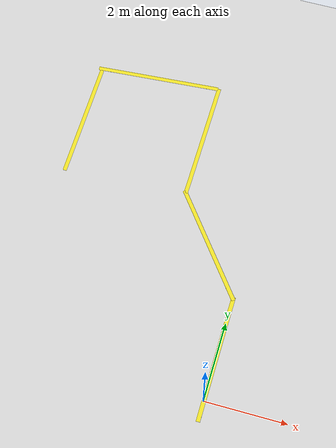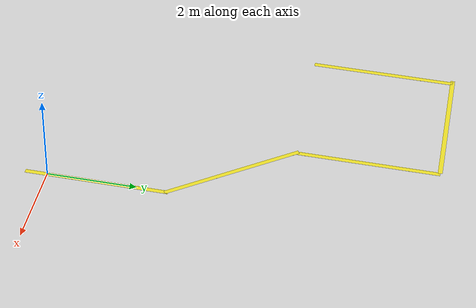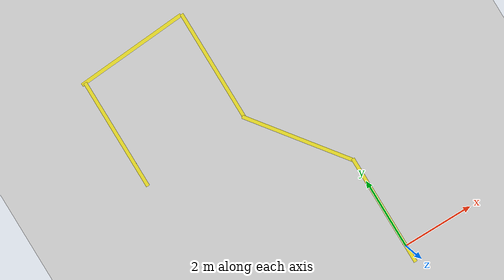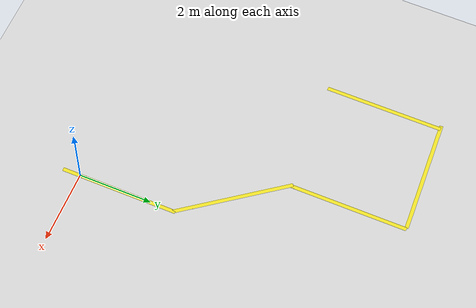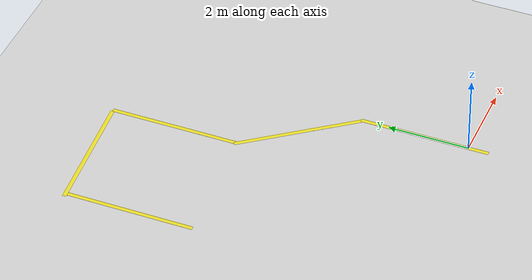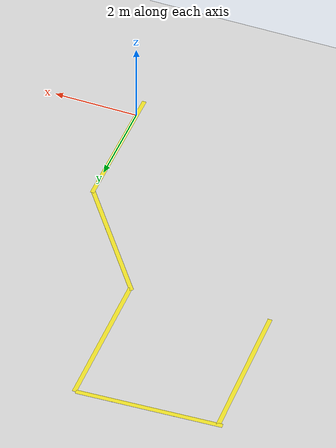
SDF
<sdf version="1.7">
 <world name="default">
  <light name="sun" type="directional">
   <pose>0 0 10 0 -0 0</pose>
   <diffuse>0.8 0.8 0.8 1</diffuse>
   <specular>0.2 0.2 0.2 1</specular>
   <attenuation>
    <range>1000</range>
    <constant>0.9</constant>
    <linear>0.01</linear>
    <quadratic>0.001</quadratic>
   </attenuation>
   <direction>-0.5 0.1 -0.9</direction>
   <spot><inner_angle>0</inner_angle><outer_angle>0</outer_angle><falloff>0</falloff></spot>
  </light>
  <model name="ground_plane">
   <static>1</static>
   <link name="link">
    <collision name="collision">
     <geometry><plane><normal>0 0 1</normal><size>100 100</size></plane></geometry>
     <surface>
      <contact><collide_bitmask>65535</collide_bitmask></contact>
      <friction><ode><mu>100</mu><mu2>50</mu2></ode></friction>
     </surface>
    </collision>
    <visual name="visual">
     <cast_shadows>0</cast_shadows>
     <geometry><plane><normal>0 0 1</normal><size>100 100</size></plane></geometry>
     <material>
      <script><uri>file://media/materials/scripts/gazebo.material</uri><name>Gazebo/Grey</name></script>
     </material>
    </visual>
   </link>
  </model>
  <gravity>0 0 -9.8</gravity>
  <magnetic_field>6e-06 2.3e-05 -4.2e-05</magnetic_field>
  <atmosphere type="adiabatic"/>
  <physics type="ode">
   <max_step_size>0.001</max_step_size>
   <real_time_factor>1</real_time_factor>
   <real_time_update_rate>1000</real_time_update_rate>
  </physics>
  <scene><ambient>0.4 0.4 0.4 1</ambient><background>0.7 0.7 0.7 1</background><shadows>1</shadows></scene>
  <spherical_coordinates>
   <surface_model>EARTH_WGS84</surface_model>
   <latitude_deg>0</latitude_deg>
   <longitude_deg>0</longitude_deg>
   <elevation>0</elevation>
   <heading_deg>0</heading_deg>
  </spherical_coordinates>
  <model name="yellow line">
   <static>1</static>
   <link name="link_ground">
    <collision name="collision">
     <geometry><plane><normal>0 0 1</normal><size>0.1 3.2</size></plane></geometry>
     <surface><friction><ode><mu>100</mu><mu2>50</mu2></ode></friction></surface>
    </collision>
    <visual name="visual_ground">
     <cast_shadows>0</cast_shadows>
     <geometry><plane><normal>0 0 1</normal><size>0.1 3.2</size></plane></geometry>
     <material>
      <script><uri>file://media/materials/scripts/gazebo.material</uri><name>Gazebo/Yellow</name></script>
     </material>
    </visual>
   </link>
   <pose>0.002969 1.09984 0.0002 0 -0 0</pose>
  </model>
  <model name="yellow line_0">
   <static>1</static>
   <link name="link_ground">
    <collision name="collision">
     <geometry><plane><normal>0 0 1</normal><size>0.1 3.2</size></plane></geometry>
     <surface><friction><ode><mu>100</mu><mu2>50</mu2></ode></friction></surface>
    </collision>
    <visual name="visual_ground">
     <cast_shadows>0</cast_shadows>
     <geometry><plane><normal>0 0 1</normal><size>0.1 3.2</size></plane></geometry>
     <material>
      <script><uri>file://media/materials/scripts/gazebo.material</uri><name>Gazebo/Yellow</name></script>
     </material>
    </visual>
   </link>
   <pose>-0.95 3.9 0.0002 0 -0 0.65</pose>
  </model>
  <model name="yellow line_1">
   <static>1</static>
   <link name="link_ground">
    <collision name="collision">
     <geometry><plane><normal>0 0 1</normal><size>0.1 3.2</size></plane></geometry>
     <surface><friction><ode><mu>100</mu><mu2>50</mu2></ode></friction></surface>
    </collision>
    <visual name="visual_ground">
     <cast_shadows>0</cast_shadows>
     <geometry><plane><normal>0 0 1</normal><size>0.1 3.2</size></plane></geometry>
     <material>
      <script><uri>file://media/materials/scripts/gazebo.material</uri><name>Gazebo/Yellow</name></script>
     </material>
    </visual>
   </link>
   <pose>-1.87418 6.72159 0.0002 0 -0 0</pose>
  </model>
  <model name="yellow line_2">
   <static>1</static>
   <link name="link_ground">
    <collision name="collision">
     <geometry><plane><normal>0 0 1</normal><size>0.1 3.2</size></plane></geometry>
     <surface><friction><ode><mu>100</mu><mu2>50</mu2></ode></friction></surface>
    </collision>
    <visual name="visual_ground">
     <cast_shadows>0</cast_shadows>
     <geometry><plane><normal>0 0 1</normal><size>0.1 3.2</size></plane></geometry>
     <material>
      <script><uri>file://media/materials/scripts/gazebo.material</uri><name>Gazebo/Yellow</name></script>
     </material>
    </visual>
   </link>
   <pose>-5 6.5 0.0002 0 -0 0</pose>
  </model>
  <model name="yellow line_3">
   <static>1</static>
   <link name="link_ground">
    <collision name="collision">
     <geometry><plane><normal>0 0 1</normal><size>0.1 3.2</size></plane></geometry>
     <surface><friction><ode><mu>100</mu><mu2>50</mu2></ode></friction></surface>
    </collision>
    <visual name="visual_ground">
     <cast_shadows>0</cast_shadows>
     <geometry><plane><normal>0 0 1</normal><size>0.1 3.2</size></plane></geometry>
     <material>
      <script><uri>file://media/materials/scripts/gazebo.material</uri><name>Gazebo/Yellow</name></script>
     </material>
    </visual>
   </link>
   <pose>-3.5 8.2 0.0002 0 0 -1.5</pose>
  </model>
 </world>
</sdf>
